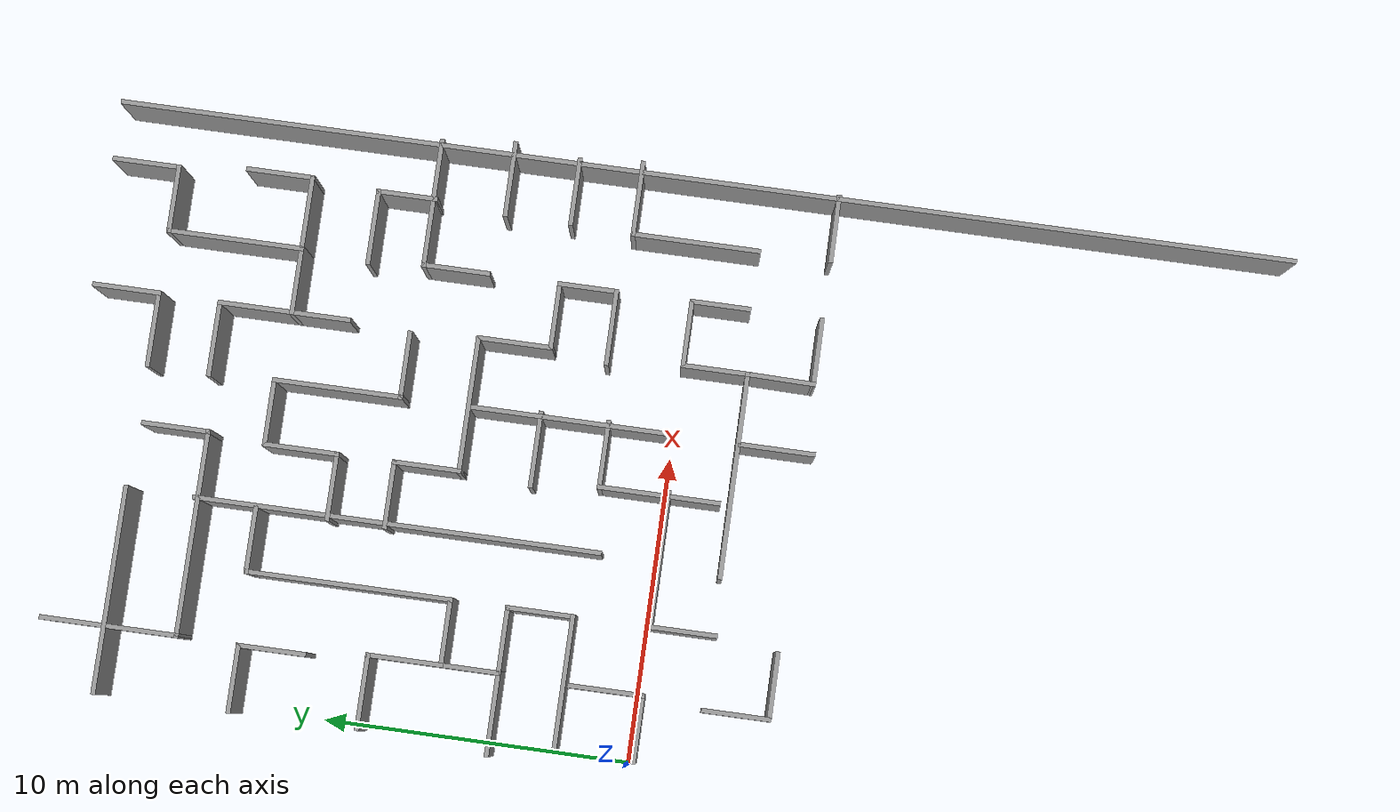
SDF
<sdf version="1.7">
 <model name="complex_maze">
  <pose>-0.002641 -0.038098 0 0 -0 0</pose>
  <link name="Wall_100">
   <collision name="Wall_100_Collision">
    <geometry><box><size>2.25 0.15 2.5</size></box></geometry>
    <pose>0 0 1.25 0 -0 0</pose>
   </collision>
   <visual name="Wall_100_Visual">
    <pose>0 0 1.25 0 -0 0</pose>
    <geometry><box><size>2.25 0.15 2.5</size></box></geometry>
    <material>
     <script><uri>file://media/materials/scripts/gazebo.material</uri><name>Gazebo/Grey</name></script>
     <ambient>1 1 1 1</ambient>
    </material>
    <meta><layer>0</layer></meta>
   </visual>
   <pose>17.9525 -4.25699 0 0 -0 3.14159</pose>
  </link>
  <link name="Wall_200">
   <collision name="Wall_200_Collision">
    <geometry><box><size>2.25 0.15 2.5</size></box></geometry>
    <pose>0 0 1.25 0 -0 0</pose>
   </collision>
   <visual name="Wall_200_Visual">
    <pose>0 0 1.25 0 -0 0</pose>
    <geometry><box><size>2.25 0.15 2.5</size></box></geometry>
    <material>
     <script><uri>file://media/materials/scripts/gazebo.material</uri><name>Gazebo/Grey</name></script>
     <ambient>1 1 1 1</ambient>
    </material>
    <meta><layer>0</layer></meta>
   </visual>
   <pose>5.42948 12.9422 0 0 -0 3.14159</pose>
  </link>
  <link name="Wall_201">
   <collision name="Wall_201_Collision">
    <geometry><box><size>6.75 0.15 2.5</size></box></geometry>
    <pose>0 0 1.25 0 -0 0</pose>
   </collision>
   <visual name="Wall_201_Visual">
    <pose>0 0 1.25 0 -0 0</pose>
    <geometry><box><size>6.75 0.15 2.5</size></box></geometry>
    <material>
     <script><uri>file://media/materials/scripts/gazebo.material</uri><name>Gazebo/Grey</name></script>
     <ambient>1 1 1 1</ambient>
    </material>
    <meta><layer>0</layer></meta>
   </visual>
   <pose>4.37948 9.64221 0 0 -0 -1.5708</pose>
  </link>
  <link name="Wall_202">
   <collision name="Wall_202_Collision">
    <geometry><box><size>2.25 0.15 2.5</size></box></geometry>
    <pose>0 0 1.25 0 -0 0</pose>
   </collision>
   <visual name="Wall_202_Visual">
    <pose>0 0 1.25 0 -0 0</pose>
    <geometry><box><size>2.25 0.15 2.5</size></box></geometry>
    <material>
     <script><uri>file://media/materials/scripts/gazebo.material</uri><name>Gazebo/Grey</name></script>
     <ambient>1 1 1 1</ambient>
    </material>
    <meta><layer>0</layer></meta>
   </visual>
   <pose>3.32948 6.34221 0 0 -0 3.14159</pose>
  </link>
  <link name="Wall_203">
   <collision name="Wall_203_Collision">
    <geometry><box><size>2.5 0.15 2.5</size></box></geometry>
    <pose>0 0 1.25 0 -0 0</pose>
   </collision>
   <visual name="Wall_203_Visual">
    <pose>0 0 1.25 0 -0 0</pose>
    <geometry><box><size>2.5 0.15 2.5</size></box></geometry>
    <material>
     <script><uri>file://media/materials/scripts/gazebo.material</uri><name>Gazebo/Grey</name></script>
     <ambient>1 1 1 1</ambient>
    </material>
    <meta><layer>0</layer></meta>
   </visual>
   <pose>2.27948 7.51721 0 0 -0 1.5708</pose>
  </link>
  <link name="Wall_204">
   <collision name="Wall_204_Collision">
    <geometry><box><size>2.5 0.15 2.5</size></box></geometry>
    <pose>0 0 1.25 0 -0 0</pose>
   </collision>
   <visual name="Wall_204_Visual">
    <pose>0 0 1.25 0 -0 0</pose>
    <geometry><box><size>2.5 0.15 2.5</size></box></geometry>
    <material>
     <script><uri>file://media/materials/scripts/gazebo.material</uri><name>Gazebo/Grey</name></script>
     <ambient>1 1 1 1</ambient>
    </material>
    <meta><layer>0</layer></meta>
   </visual>
   <pose>1.10448 8.69221 0 0 -0 3.14159</pose>
  </link>
  <link name="Wall_207">
   <collision name="Wall_207_Collision">
    <geometry><box><size>2 0.15 2.5</size></box></geometry>
    <pose>0 0 1.25 0 -0 0</pose>
   </collision>
   <visual name="Wall_207_Visual">
    <pose>0 0 1.25 0 -0 0</pose>
    <geometry><box><size>2 0.15 2.5</size></box></geometry>
    <material>
     <script><uri>file://media/materials/scripts/gazebo.material</uri><name>Gazebo/Grey</name></script>
     <ambient>1 1 1 1</ambient>
    </material>
    <meta><layer>0</layer></meta>
   </visual>
   <pose>2.27948 5.41721 0 0 -0 -1.5708</pose>
  </link>
  <link name="Wall_208">
   <collision name="Wall_208_Collision">
    <geometry><box><size>2.75 0.15 2.5</size></box></geometry>
    <pose>0 0 1.25 0 -0 0</pose>
   </collision>
   <visual name="Wall_208_Visual">
    <pose>0 0 1.25 0 -0 0</pose>
    <geometry><box><size>2.75 0.15 2.5</size></box></geometry>
    <material>
     <script><uri>file://media/materials/scripts/gazebo.material</uri><name>Gazebo/Grey</name></script>
     <ambient>1 1 1 1</ambient>
    </material>
    <meta><layer>0</layer></meta>
   </visual>
   <pose>0.97948 4.49221 0 0 -0 3.14159</pose>
  </link>
  <link name="Wall_210">
   <collision name="Wall_210_Collision">
    <geometry><box><size>2.25 0.15 2.5</size></box></geometry>
    <pose>0 0 1.25 0 -0 0</pose>
   </collision>
   <visual name="Wall_210_Visual">
    <pose>0 0 1.25 0 -0 0</pose>
    <geometry><box><size>2.25 0.15 2.5</size></box></geometry>
    <material>
     <script><uri>file://media/materials/scripts/gazebo.material</uri><name>Gazebo/Grey</name></script>
     <ambient>1 1 1 1</ambient>
    </material>
    <meta><layer>0</layer></meta>
   </visual>
   <pose>3.32948 4.49221 0 0 -0 0</pose>
  </link>
  <link name="Wall_211">
   <collision name="Wall_211_Collision">
    <geometry><box><size>2.25 0.15 2.5</size></box></geometry>
    <pose>0 0 1.25 0 -0 0</pose>
   </collision>
   <visual name="Wall_211_Visual">
    <pose>0 0 1.25 0 -0 0</pose>
    <geometry><box><size>2.25 0.15 2.5</size></box></geometry>
    <material>
     <script><uri>file://media/materials/scripts/gazebo.material</uri><name>Gazebo/Grey</name></script>
     <ambient>1 1 1 1</ambient>
    </material>
    <meta><layer>0</layer></meta>
   </visual>
   <pose>4.37948 3.44221 0 0 -0 -1.5708</pose>
  </link>
  <link name="Wall_212">
   <collision name="Wall_212_Collision">
    <geometry><box><size>4.5 0.15 2.5</size></box></geometry>
    <pose>0 0 1.25 0 -0 0</pose>
   </collision>
   <visual name="Wall_212_Visual">
    <pose>0 0 1.25 0 -0 0</pose>
    <geometry><box><size>4.5 0.15 2.5</size></box></geometry>
    <material>
     <script><uri>file://media/materials/scripts/gazebo.material</uri><name>Gazebo/Grey</name></script>
     <ambient>1 1 1 1</ambient>
    </material>
    <meta><layer>0</layer></meta>
   </visual>
   <pose>2.20448 2.39221 0 0 -0 3.14159</pose>
  </link>
  <link name="Wall_214">
   <collision name="Wall_214_Collision">
    <geometry><box><size>2.5 0.15 2.5</size></box></geometry>
    <pose>0 0 1.25 0 -0 0</pose>
   </collision>
   <visual name="Wall_214_Visual">
    <pose>0 0 1.25 0 -0 0</pose>
    <geometry><box><size>2.5 0.15 2.5</size></box></geometry>
    <material>
     <script><uri>file://media/materials/scripts/gazebo.material</uri><name>Gazebo/Grey</name></script>
     <ambient>1 1 1 1</ambient>
    </material>
    <meta><layer>0</layer></meta>
   </visual>
   <pose>2.19928 1.01321 0 0 -0 -1.5708</pose>
  </link>
  <link name="Wall_215">
   <collision name="Wall_215_Collision">
    <geometry><box><size>2.25 0.15 2.5</size></box></geometry>
    <pose>0 0 1.25 0 -0 0</pose>
   </collision>
   <visual name="Wall_215_Visual">
    <pose>0 0 1.25 0 -0 0</pose>
    <geometry><box><size>2.25 0.15 2.5</size></box></geometry>
    <material>
     <script><uri>file://media/materials/scripts/gazebo.material</uri><name>Gazebo/Grey</name></script>
     <ambient>1 1 1 1</ambient>
    </material>
    <meta><layer>0</layer></meta>
   </visual>
   <pose>1.14928 -0.161789 0 0 -0 3.14159</pose>
  </link>
  <link name="Wall_219">
   <collision name="Wall_219_Collision">
    <geometry><box><size>2.25 0.15 2.5</size></box></geometry>
    <pose>0 0 1.25 0 -0 0</pose>
   </collision>
   <visual name="Wall_219_Visual">
    <pose>0 0 1.25 0 -0 0</pose>
    <geometry><box><size>2.25 0.15 2.5</size></box></geometry>
    <material>
     <script><uri>file://media/materials/scripts/gazebo.material</uri><name>Gazebo/Grey</name></script>
     <ambient>1 1 1 1</ambient>
    </material>
    <meta><layer>0</layer></meta>
   </visual>
   <pose>1.99867 -3.19549 0 0 -0 -1.5708</pose>
  </link>
  <link name="Wall_220">
   <collision name="Wall_220_Collision">
    <geometry><box><size>2.25 0.15 2.5</size></box></geometry>
    <pose>0 0 1.25 0 -0 0</pose>
   </collision>
   <visual name="Wall_220_Visual">
    <pose>0 0 1.25 0 -0 0</pose>
    <geometry><box><size>2.25 0.15 2.5</size></box></geometry>
    <material>
     <script><uri>file://media/materials/scripts/gazebo.material</uri><name>Gazebo/Grey</name></script>
     <ambient>1 1 1 1</ambient>
    </material>
    <meta><layer>0</layer></meta>
   </visual>
   <pose>3.04867 -4.24549 0 0 -0 0</pose>
  </link>
  <link name="Wall_249">
   <collision name="Wall_249_Collision">
    <geometry><box><size>6.5 0.15 2.5</size></box></geometry>
    <pose>0 0 1.25 0 -0 0</pose>
   </collision>
   <visual name="Wall_249_Visual">
    <pose>0 0 1.25 0 -0 0</pose>
    <geometry><box><size>6.5 0.15 2.5</size></box></geometry>
    <material>
     <script><uri>file://media/materials/scripts/gazebo.material</uri><name>Gazebo/Grey</name></script>
     <ambient>1 1 1 1</ambient>
    </material>
    <meta><layer>0</layer></meta>
   </visual>
   <pose>10.5992 3.34691 0 0 -0 -1.5708</pose>
  </link>
  <link name="Wall_251">
   <collision name="Wall_251_Collision">
    <geometry><box><size>2.5 0.15 2.5</size></box></geometry>
    <pose>0 0 1.25 0 -0 0</pose>
   </collision>
   <visual name="Wall_251_Visual">
    <pose>0 0 1.25 0 -0 0</pose>
    <geometry><box><size>2.5 0.15 2.5</size></box></geometry>
    <material>
     <script><uri>file://media/materials/scripts/gazebo.material</uri><name>Gazebo/Grey</name></script>
     <ambient>1 1 1 1</ambient>
    </material>
    <meta><layer>0</layer></meta>
   </visual>
   <pose>9.52707 4.32831 0 0 -0 0</pose>
  </link>
  <link name="Wall_253">
   <collision name="Wall_253_Collision">
    <geometry><box><size>2.25 0.15 2.5</size></box></geometry>
    <pose>0 0 1.25 0 -0 0</pose>
   </collision>
   <visual name="Wall_253_Visual">
    <pose>0 0 1.25 0 -0 0</pose>
    <geometry><box><size>2.25 0.15 2.5</size></box></geometry>
    <material>
     <script><uri>file://media/materials/scripts/gazebo.material</uri><name>Gazebo/Grey</name></script>
     <ambient>1 1 1 1</ambient>
    </material>
    <meta><layer>0</layer></meta>
   </visual>
   <pose>9.65618 2.13471 0 0 -0 3.14159</pose>
  </link>
  <link name="Wall_254">
   <collision name="Wall_254_Collision">
    <geometry><box><size>4 0.15 2.5</size></box></geometry>
    <pose>0 0 1.25 0 -0 0</pose>
   </collision>
   <visual name="Wall_254_Visual">
    <pose>0 0 1.25 0 -0 0</pose>
    <geometry><box><size>4 0.15 2.5</size></box></geometry>
    <material>
     <script><uri>file://media/materials/scripts/gazebo.material</uri><name>Gazebo/Grey</name></script>
     <ambient>1 1 1 1</ambient>
    </material>
    <meta><layer>0</layer></meta>
   </visual>
   <pose>8.60618 0.209708 0 0 -0 -1.5708</pose>
  </link>
  <link name="Wall_256">
   <collision name="Wall_256_Collision">
    <geometry><box><size>2.25 0.15 2.5</size></box></geometry>
    <pose>0 0 1.25 0 -0 0</pose>
   </collision>
   <visual name="Wall_256_Visual">
    <pose>0 0 1.25 0 -0 0</pose>
    <geometry><box><size>2.25 0.15 2.5</size></box></geometry>
    <material>
     <script><uri>file://media/materials/scripts/gazebo.material</uri><name>Gazebo/Grey</name></script>
     <ambient>1 1 1 1</ambient>
    </material>
    <meta><layer>0</layer></meta>
   </visual>
   <pose>4.39288 -1.14899 0 0 -0 1.5708</pose>
  </link>
  <link name="Wall_257">
   <collision name="Wall_257_Collision">
    <geometry><box><size>4.5 0.15 2.5</size></box></geometry>
    <pose>0 0 1.25 0 -0 0</pose>
   </collision>
   <visual name="Wall_257_Visual">
    <pose>0 0 1.25 0 -0 0</pose>
    <geometry><box><size>4.5 0.15 2.5</size></box></geometry>
    <material>
     <script><uri>file://media/materials/scripts/gazebo.material</uri><name>Gazebo/Grey</name></script>
     <ambient>1 1 1 1</ambient>
    </material>
    <meta><layer>0</layer></meta>
   </visual>
   <pose>6.56788 -0.098994 0 0 -0 0</pose>
  </link>
  <link name="Wall_259">
   <collision name="Wall_259_Collision">
    <geometry><box><size>6.75 0.15 2.5</size></box></geometry>
    <pose>0 0 1.25 0 -0 0</pose>
   </collision>
   <visual name="Wall_259_Visual">
    <pose>0 0 1.25 0 -0 0</pose>
    <geometry><box><size>6.75 0.15 2.5</size></box></geometry>
    <material>
     <script><uri>file://media/materials/scripts/gazebo.material</uri><name>Gazebo/Grey</name></script>
     <ambient>1 1 1 1</ambient>
    </material>
    <meta><layer>0</layer></meta>
   </visual>
   <pose>9.56547 -2.09199 0 0 -0 0</pose>
  </link>
  <link name="Wall_260">
   <collision name="Wall_260_Collision">
    <geometry><box><size>2.25 0.15 2.5</size></box></geometry>
    <pose>0 0 1.25 0 -0 0</pose>
   </collision>
   <visual name="Wall_260_Visual">
    <pose>0 0 1.25 0 -0 0</pose>
    <geometry><box><size>2.25 0.15 2.5</size></box></geometry>
    <material>
     <script><uri>file://media/materials/scripts/gazebo.material</uri><name>Gazebo/Grey</name></script>
     <ambient>1 1 1 1</ambient>
    </material>
    <meta><layer>0</layer></meta>
   </visual>
   <pose>12.8655 -1.04199 0 0 -0 1.5708</pose>
  </link>
  <link name="Wall_261">
   <collision name="Wall_261_Collision">
    <geometry><box><size>2.25 0.15 2.5</size></box></geometry>
    <pose>0 0 1.25 0 -0 0</pose>
   </collision>
   <visual name="Wall_261_Visual">
    <pose>0 0 1.25 0 -0 0</pose>
    <geometry><box><size>2.25 0.15 2.5</size></box></geometry>
    <material>
     <script><uri>file://media/materials/scripts/gazebo.material</uri><name>Gazebo/Grey</name></script>
     <ambient>1 1 1 1</ambient>
    </material>
    <meta><layer>0</layer></meta>
   </visual>
   <pose>13.9155 0.008011 0 0 -0 0</pose>
  </link>
  <link name="Wall_262">
   <collision name="Wall_262_Collision">
    <geometry><box><size>2 0.15 2.5</size></box></geometry>
    <pose>0 0 1.25 0 -0 0</pose>
   </collision>
   <visual name="Wall_262_Visual">
    <pose>0 0 1.25 0 -0 0</pose>
    <geometry><box><size>2 0.15 2.5</size></box></geometry>
    <material>
     <script><uri>file://media/materials/scripts/gazebo.material</uri><name>Gazebo/Grey</name></script>
     <ambient>1 1 1 1</ambient>
    </material>
    <meta><layer>0</layer></meta>
   </visual>
   <pose>14.9655 -0.916989 0 0 -0 -1.5708</pose>
  </link>
  <link name="Wall_264">
   <collision name="Wall_264_Collision">
    <geometry><box><size>2.25 0.15 2.5</size></box></geometry>
    <pose>0 0 1.25 0 -0 0</pose>
   </collision>
   <visual name="Wall_264_Visual">
    <pose>0 0 1.25 0 -0 0</pose>
    <geometry><box><size>2.25 0.15 2.5</size></box></geometry>
    <material>
     <script><uri>file://media/materials/scripts/gazebo.material</uri><name>Gazebo/Grey</name></script>
     <ambient>1 1 1 1</ambient>
    </material>
    <meta><layer>0</layer></meta>
   </visual>
   <pose>13.8829 -4.23209 0 0 -0 3.14159</pose>
  </link>
  <link name="Wall_265">
   <collision name="Wall_265_Collision">
    <geometry><box><size>2.29035 0.15 2.5</size></box></geometry>
    <pose>0 0 1.25 0 -0 0</pose>
   </collision>
   <visual name="Wall_265_Visual">
    <pose>0 0 1.25 0 -0 0</pose>
    <geometry><box><size>2.29035 0.15 2.5</size></box></geometry>
    <material>
     <script><uri>file://media/materials/scripts/gazebo.material</uri><name>Gazebo/Grey</name></script>
     <ambient>1 1 1 1</ambient>
    </material>
    <meta><layer>0</layer></meta>
   </visual>
   <pose>12.8492 -3.16204 0 0 -0 1.55557</pose>
  </link>
  <link name="Wall_269">
   <collision name="Wall_269_Collision">
    <geometry><box><size>2.5 0.15 2.5</size></box></geometry>
    <pose>0 0 1.25 0 -0 0</pose>
   </collision>
   <visual name="Wall_269_Visual">
    <pose>0 0 1.25 0 -0 0</pose>
    <geometry><box><size>2.5 0.15 2.5</size></box></geometry>
    <material>
     <script><uri>file://media/materials/scripts/gazebo.material</uri><name>Gazebo/Grey</name></script>
     <ambient>1 1 1 1</ambient>
    </material>
    <meta><layer>0</layer></meta>
   </visual>
   <pose>10.5795 -3.34719 0 0 -0 1.5708</pose>
  </link>
  <link name="Wall_3">
   <collision name="Wall_3_Collision">
    <geometry><box><size>38.5 0.15 2.5</size></box></geometry>
    <pose>0 0 1.25 0 -0 0</pose>
   </collision>
   <visual name="Wall_3_Visual">
    <pose>0 0 1.25 0 -0 0</pose>
    <geometry><box><size>38.5 0.15 2.5</size></box></geometry>
    <material>
     <script><uri>file://media/materials/scripts/gazebo.material</uri><name>Gazebo/Grey</name></script>
     <ambient>1 1 1 1</ambient>
    </material>
    <meta><layer>0</layer></meta>
   </visual>
   <pose>18.9357 0.058416 0 0 -0 1.5708</pose>
  </link>
  <link name="Wall_33">
   <collision name="Wall_33_Collision">
    <geometry><box><size>4.5 0.15 2.5</size></box></geometry>
    <pose>0 0 1.25 0 -0 0</pose>
   </collision>
   <visual name="Wall_33_Visual">
    <pose>0 0 1.25 0 -0 0</pose>
    <geometry><box><size>4.5 0.15 2.5</size></box></geometry>
    <material>
     <script><uri>file://media/materials/scripts/gazebo.material</uri><name>Gazebo/Grey</name></script>
     <ambient>1 1 1 1</ambient>
    </material>
    <meta><layer>0</layer></meta>
   </visual>
   <pose>2.05219 17.0117 0 0 -0 -1.5708</pose>
  </link>
  <link name="Wall_34">
   <collision name="Wall_34_Collision">
    <geometry><box><size>6.75 0.15 2.5</size></box></geometry>
    <pose>0 0 1.25 0 -0 0</pose>
   </collision>
   <visual name="Wall_34_Visual">
    <pose>0 0 1.25 0 -0 0</pose>
    <geometry><box><size>6.75 0.15 2.5</size></box></geometry>
    <material>
     <script><uri>file://media/materials/scripts/gazebo.material</uri><name>Gazebo/Grey</name></script>
     <ambient>1 1 1 1</ambient>
    </material>
    <meta><layer>0</layer></meta>
   </visual>
   <pose>5.35219 14.8367 0 0 -0 0</pose>
  </link>
  <link name="Wall_35">
   <collision name="Wall_35_Collision">
    <geometry><box><size>2.25 0.15 2.5</size></box></geometry>
    <pose>0 0 1.25 0 -0 0</pose>
   </collision>
   <visual name="Wall_35_Visual">
    <pose>0 0 1.25 0 -0 0</pose>
    <geometry><box><size>2.25 0.15 2.5</size></box></geometry>
    <material>
     <script><uri>file://media/materials/scripts/gazebo.material</uri><name>Gazebo/Grey</name></script>
     <ambient>1 1 1 1</ambient>
    </material>
    <meta><layer>0</layer></meta>
   </visual>
   <pose>8.65219 15.8867 0 0 -0 1.5708</pose>
  </link>
  <link name="Wall_37">
   <collision name="Wall_37_Collision">
    <geometry><box><size>6.75 0.15 2.5</size></box></geometry>
    <pose>0 0 1.25 0 -0 0</pose>
   </collision>
   <visual name="Wall_37_Visual">
    <pose>0 0 1.25 0 -0 0</pose>
    <geometry><box><size>6.75 0.15 2.5</size></box></geometry>
    <material>
     <script><uri>file://media/materials/scripts/gazebo.material</uri><name>Gazebo/Grey</name></script>
     <ambient>1 1 1 1</ambient>
    </material>
    <meta><layer>0</layer></meta>
   </visual>
   <pose>3.2174 17.1753 0 0 -0 3.14159</pose>
  </link>
  <link name="Wall_39">
   <collision name="Wall_39_Collision">
    <geometry><box><size>2.25 0.15 2.5</size></box></geometry>
    <pose>0 0 1.25 0 -0 0</pose>
   </collision>
   <visual name="Wall_39_Visual">
    <pose>0 0 1.25 0 -0 0</pose>
    <geometry><box><size>2.25 0.15 2.5</size></box></geometry>
    <material>
     <script><uri>file://media/materials/scripts/gazebo.material</uri><name>Gazebo/Grey</name></script>
     <ambient>1 1 1 1</ambient>
    </material>
    <meta><layer>0</layer></meta>
   </visual>
   <pose>0.967403 12.8253 0 0 -0 0</pose>
  </link>
  <link name="Wall_40">
   <collision name="Wall_40_Collision">
    <geometry><box><size>2.25 0.15 2.5</size></box></geometry>
    <pose>0 0 1.25 0 -0 0</pose>
   </collision>
   <visual name="Wall_40_Visual">
    <pose>0 0 1.25 0 -0 0</pose>
    <geometry><box><size>2.25 0.15 2.5</size></box></geometry>
    <material>
     <script><uri>file://media/materials/scripts/gazebo.material</uri><name>Gazebo/Grey</name></script>
     <ambient>1 1 1 1</ambient>
    </material>
    <meta><layer>0</layer></meta>
   </visual>
   <pose>2.0174 11.7753 0 0 -0 -1.5708</pose>
  </link>
  <link name="Wall_56">
   <collision name="Wall_56_Collision">
    <geometry><box><size>2.25 0.15 2.5</size></box></geometry>
    <pose>0 0 1.25 0 -0 0</pose>
   </collision>
   <visual name="Wall_56_Visual">
    <pose>0 0 1.25 0 -0 0</pose>
    <geometry><box><size>2.25 0.15 2.5</size></box></geometry>
    <material>
     <script><uri>file://media/materials/scripts/gazebo.material</uri><name>Gazebo/Grey</name></script>
     <ambient>1 1 1 1</ambient>
    </material>
    <meta><layer>0</layer></meta>
   </visual>
   <pose>12.8844 18.1571 0 0 -0 -1.5708</pose>
  </link>
  <link name="Wall_57">
   <collision name="Wall_57_Collision">
    <geometry><box><size>2.5 0.15 2.5</size></box></geometry>
    <pose>0 0 1.25 0 -0 0</pose>
   </collision>
   <visual name="Wall_57_Visual">
    <pose>0 0 1.25 0 -0 0</pose>
    <geometry><box><size>2.5 0.15 2.5</size></box></geometry>
    <material>
     <script><uri>file://media/materials/scripts/gazebo.material</uri><name>Gazebo/Grey</name></script>
     <ambient>1 1 1 1</ambient>
    </material>
    <meta><layer>0</layer></meta>
   </visual>
   <pose>11.7094 17.1071 0 0 -0 3.14159</pose>
  </link>
  <link name="Wall_59">
   <collision name="Wall_59_Collision">
    <geometry><box><size>2.25 0.15 2.5</size></box></geometry>
    <pose>0 0 1.25 0 -0 0</pose>
   </collision>
   <visual name="Wall_59_Visual">
    <pose>0 0 1.25 0 -0 0</pose>
    <geometry><box><size>2.25 0.15 2.5</size></box></geometry>
    <material>
     <script><uri>file://media/materials/scripts/gazebo.material</uri><name>Gazebo/Grey</name></script>
     <ambient>1 1 1 1</ambient>
    </material>
    <meta><layer>0</layer></meta>
   </visual>
   <pose>17.048 18.1571 0 0 -0 -1.5708</pose>
  </link>
  <link name="Wall_60">
   <collision name="Wall_60_Collision">
    <geometry><box><size>2.25 0.15 2.5</size></box></geometry>
    <pose>0 0 1.25 0 -0 0</pose>
   </collision>
   <visual name="Wall_60_Visual">
    <pose>0 0 1.25 0 -0 0</pose>
    <geometry><box><size>2.25 0.15 2.5</size></box></geometry>
    <material>
     <script><uri>file://media/materials/scripts/gazebo.material</uri><name>Gazebo/Grey</name></script>
     <ambient>1 1 1 1</ambient>
    </material>
    <meta><layer>0</layer></meta>
   </visual>
   <pose>15.998 17.1071 0 0 -0 3.14159</pose>
  </link>
  <link name="Wall_61">
   <collision name="Wall_61_Collision">
    <geometry><box><size>4.5 0.15 2.5</size></box></geometry>
    <pose>0 0 1.25 0 -0 0</pose>
   </collision>
   <visual name="Wall_61_Visual">
    <pose>0 0 1.25 0 -0 0</pose>
    <geometry><box><size>4.5 0.15 2.5</size></box></geometry>
    <material>
     <script><uri>file://media/materials/scripts/gazebo.material</uri><name>Gazebo/Grey</name></script>
     <ambient>1 1 1 1</ambient>
    </material>
    <meta><layer>0</layer></meta>
   </visual>
   <pose>14.948 14.9321 0 0 -0 -1.5708</pose>
  </link>
  <link name="Wall_62">
   <collision name="Wall_62_Collision">
    <geometry><box><size>2.5 0.15 2.5</size></box></geometry>
    <pose>0 0 1.25 0 -0 0</pose>
   </collision>
   <visual name="Wall_62_Visual">
    <pose>0 0 1.25 0 -0 0</pose>
    <geometry><box><size>2.5 0.15 2.5</size></box></geometry>
    <material>
     <script><uri>file://media/materials/scripts/gazebo.material</uri><name>Gazebo/Grey</name></script>
     <ambient>1 1 1 1</ambient>
    </material>
    <meta><layer>0</layer></meta>
   </visual>
   <pose>16.123 12.7571 0 0 -0 0</pose>
  </link>
  <link name="Wall_63">
   <collision name="Wall_63_Collision">
    <geometry><box><size>2.25 0.15 2.5</size></box></geometry>
    <pose>0 0 1.25 0 -0 0</pose>
   </collision>
   <visual name="Wall_63_Visual">
    <pose>0 0 1.25 0 -0 0</pose>
    <geometry><box><size>2.25 0.15 2.5</size></box></geometry>
    <material>
     <script><uri>file://media/materials/scripts/gazebo.material</uri><name>Gazebo/Grey</name></script>
     <ambient>1 1 1 1</ambient>
    </material>
    <meta><layer>0</layer></meta>
   </visual>
   <pose>17.298 13.8071 0 0 -0 1.5708</pose>
  </link>
  <link name="Wall_65">
   <collision name="Wall_65_Collision">
    <geometry><box><size>2.25 0.15 2.5</size></box></geometry>
    <pose>0 0 1.25 0 -0 0</pose>
   </collision>
   <visual name="Wall_65_Visual">
    <pose>0 0 1.25 0 -0 0</pose>
    <geometry><box><size>2.25 0.15 2.5</size></box></geometry>
    <material>
     <script><uri>file://media/materials/scripts/gazebo.material</uri><name>Gazebo/Grey</name></script>
     <ambient>1 1 1 1</ambient>
    </material>
    <meta><layer>0</layer></meta>
   </visual>
   <pose>13.8979 12.7571 0 0 -0 3.14159</pose>
  </link>
  <link name="Wall_66">
   <collision name="Wall_66_Collision">
    <geometry><box><size>2 0.15 2.5</size></box></geometry>
    <pose>0 0 1.25 0 -0 0</pose>
   </collision>
   <visual name="Wall_66_Visual">
    <pose>0 0 1.25 0 -0 0</pose>
    <geometry><box><size>2 0.15 2.5</size></box></geometry>
    <material>
     <script><uri>file://media/materials/scripts/gazebo.material</uri><name>Gazebo/Grey</name></script>
     <ambient>1 1 1 1</ambient>
    </material>
    <meta><layer>0</layer></meta>
   </visual>
   <pose>12.848 11.8321 0 0 -0 -1.5708</pose>
  </link>
  <link name="Wall_68">
   <collision name="Wall_68_Collision">
    <geometry><box><size>2.5 0.15 2.5</size></box></geometry>
    <pose>0 0 1.25 0 -0 0</pose>
   </collision>
   <visual name="Wall_68_Visual">
    <pose>0 0 1.25 0 -0 0</pose>
    <geometry><box><size>2.5 0.15 2.5</size></box></geometry>
    <material>
     <script><uri>file://media/materials/scripts/gazebo.material</uri><name>Gazebo/Grey</name></script>
     <ambient>1 1 1 1</ambient>
    </material>
    <meta><layer>0</layer></meta>
   </visual>
   <pose>12.848 13.9321 0 0 -0 1.5708</pose>
  </link>
  <link name="Wall_69">
   <collision name="Wall_69_Collision">
    <geometry><box><size>2.5 0.15 2.5</size></box></geometry>
    <pose>0 0 1.25 0 -0 0</pose>
   </collision>
   <visual name="Wall_69_Visual">
    <pose>0 0 1.25 0 -0 0</pose>
    <geometry><box><size>2.5 0.15 2.5</size></box></geometry>
    <material>
     <script><uri>file://media/materials/scripts/gazebo.material</uri><name>Gazebo/Grey</name></script>
     <ambient>1 1 1 1</ambient>
    </material>
    <meta><layer>0</layer></meta>
   </visual>
   <pose>11.673 15.1071 0 0 -0 3.14159</pose>
  </link>
  <link name="Wall_71">
   <collision name="Wall_71_Collision">
    <geometry><box><size>13.25 0.15 2.5</size></box></geometry>
    <pose>0 0 1.25 0 -0 0</pose>
   </collision>
   <visual name="Wall_71_Visual">
    <pose>0 0 1.25 0 -0 0</pose>
    <geometry><box><size>13.25 0.15 2.5</size></box></geometry>
    <material>
     <script><uri>file://media/materials/scripts/gazebo.material</uri><name>Gazebo/Grey</name></script>
     <ambient>1 1 1 1</ambient>
    </material>
    <meta><layer>0</layer></meta>
   </visual>
   <pose>6.50715 8.38925 0 0 -0 -1.5708</pose>
  </link>
  <link name="Wall_73">
   <collision name="Wall_73_Collision">
    <geometry><box><size>2.25 0.15 2.5</size></box></geometry>
    <pose>0 0 1.25 0 -0 0</pose>
   </collision>
   <visual name="Wall_73_Visual">
    <pose>0 0 1.25 0 -0 0</pose>
    <geometry><box><size>2.25 0.15 2.5</size></box></geometry>
    <material>
     <script><uri>file://media/materials/scripts/gazebo.material</uri><name>Gazebo/Grey</name></script>
     <ambient>1 1 1 1</ambient>
    </material>
    <meta><layer>0</layer></meta>
   </visual>
   <pose>7.45075 10.63 0 0 -0 0</pose>
  </link>
  <link name="Wall_74">
   <collision name="Wall_74_Collision">
    <geometry><box><size>2.5 0.15 2.5</size></box></geometry>
    <pose>0 0 1.25 0 -0 0</pose>
   </collision>
   <visual name="Wall_74_Visual">
    <pose>0 0 1.25 0 -0 0</pose>
    <geometry><box><size>2.5 0.15 2.5</size></box></geometry>
    <material>
     <script><uri>file://media/materials/scripts/gazebo.material</uri><name>Gazebo/Grey</name></script>
     <ambient>1 1 1 1</ambient>
    </material>
    <meta><layer>0</layer></meta>
   </visual>
   <pose>8.50075 11.805 0 0 -0 1.5708</pose>
  </link>
  <link name="Wall_75">
   <collision name="Wall_75_Collision">
    <geometry><box><size>2.25 0.15 2.5</size></box></geometry>
    <pose>0 0 1.25 0 -0 0</pose>
   </collision>
   <visual name="Wall_75_Visual">
    <pose>0 0 1.25 0 -0 0</pose>
    <geometry><box><size>2.25 0.15 2.5</size></box></geometry>
    <material>
     <script><uri>file://media/materials/scripts/gazebo.material</uri><name>Gazebo/Grey</name></script>
     <ambient>1 1 1 1</ambient>
    </material>
    <meta><layer>0</layer></meta>
   </visual>
   <pose>9.55075 12.98 0 0 -0 0</pose>
  </link>
  <link name="Wall_76">
   <collision name="Wall_76_Collision">
    <geometry><box><size>4.25 0.15 2.5</size></box></geometry>
    <pose>0 0 1.25 0 -0 0</pose>
   </collision>
   <visual name="Wall_76_Visual">
    <pose>0 0 1.25 0 -0 0</pose>
    <geometry><box><size>4.25 0.15 2.5</size></box></geometry>
    <material>
     <script><uri>file://media/materials/scripts/gazebo.material</uri><name>Gazebo/Grey</name></script>
     <ambient>1 1 1 1</ambient>
    </material>
    <meta><layer>0</layer></meta>
   </visual>
   <pose>10.6007 10.93 0 0 -0 -1.5708</pose>
  </link>
  <link name="Wall_77">
   <collision name="Wall_77_Collision">
    <geometry><box><size>2.25 0.15 2.5</size></box></geometry>
    <pose>0 0 1.25 0 -0 0</pose>
   </collision>
   <visual name="Wall_77_Visual">
    <pose>0 0 1.25 0 -0 0</pose>
    <geometry><box><size>2.25 0.15 2.5</size></box></geometry>
    <material>
     <script><uri>file://media/materials/scripts/gazebo.material</uri><name>Gazebo/Grey</name></script>
     <ambient>1 1 1 1</ambient>
    </material>
    <meta><layer>0</layer></meta>
   </visual>
   <pose>11.6507 8.88002 0 0 -0 0</pose>
  </link>
  <link name="Wall_79">
   <collision name="Wall_79_Collision">
    <geometry><box><size>4.25 0.15 2.5</size></box></geometry>
    <pose>0 0 1.25 0 -0 0</pose>
   </collision>
   <visual name="Wall_79_Visual">
    <pose>0 0 1.25 0 -0 0</pose>
    <geometry><box><size>4.25 0.15 2.5</size></box></geometry>
    <material>
     <script><uri>file://media/materials/scripts/gazebo.material</uri><name>Gazebo/Grey</name></script>
     <ambient>1 1 1 1</ambient>
    </material>
    <meta><layer>0</layer></meta>
   </visual>
   <pose>17.0124 8.76801 0 0 -0 3.14159</pose>
  </link>
  <link name="Wall_80">
   <collision name="Wall_80_Collision">
    <geometry><box><size>2.25 0.15 2.5</size></box></geometry>
    <pose>0 0 1.25 0 -0 0</pose>
   </collision>
   <visual name="Wall_80_Visual">
    <pose>0 0 1.25 0 -0 0</pose>
    <geometry><box><size>2.25 0.15 2.5</size></box></geometry>
    <material>
     <script><uri>file://media/materials/scripts/gazebo.material</uri><name>Gazebo/Grey</name></script>
     <ambient>1 1 1 1</ambient>
    </material>
    <meta><layer>0</layer></meta>
   </visual>
   <pose>14.9624 7.71801 0 0 -0 -1.5708</pose>
  </link>
  <link name="Wall_82">
   <collision name="Wall_82_Collision">
    <geometry><box><size>2 0.15 2.5</size></box></geometry>
    <pose>0 0 1.25 0 -0 0</pose>
   </collision>
   <visual name="Wall_82_Visual">
    <pose>0 0 1.25 0 -0 0</pose>
    <geometry><box><size>2 0.15 2.5</size></box></geometry>
    <material>
     <script><uri>file://media/materials/scripts/gazebo.material</uri><name>Gazebo/Grey</name></script>
     <ambient>1 1 1 1</ambient>
    </material>
    <meta><layer>0</layer></meta>
   </visual>
   <pose>17.1472 9.63981 0 0 -0 1.5708</pose>
  </link>
  <link name="Wall_83">
   <collision name="Wall_83_Collision">
    <geometry><box><size>2.5 0.15 2.5</size></box></geometry>
    <pose>0 0 1.25 0 -0 0</pose>
   </collision>
   <visual name="Wall_83_Visual">
    <pose>0 0 1.25 0 -0 0</pose>
    <geometry><box><size>2.5 0.15 2.5</size></box></geometry>
    <material>
     <script><uri>file://media/materials/scripts/gazebo.material</uri><name>Gazebo/Grey</name></script>
     <ambient>1 1 1 1</ambient>
    </material>
    <meta><layer>0</layer></meta>
   </visual>
   <pose>15.9722 10.5648 0 0 -0 3.14159</pose>
  </link>
  <link name="Wall_85">
   <collision name="Wall_85_Collision">
    <geometry><box><size>2.25 0.15 2.5</size></box></geometry>
    <pose>0 0 1.25 0 -0 0</pose>
   </collision>
   <visual name="Wall_85_Visual">
    <pose>0 0 1.25 0 -0 0</pose>
    <geometry><box><size>2.25 0.15 2.5</size></box></geometry>
    <material>
     <script><uri>file://media/materials/scripts/gazebo.material</uri><name>Gazebo/Grey</name></script>
     <ambient>1 1 1 1</ambient>
    </material>
    <meta><layer>0</layer></meta>
   </visual>
   <pose>7.45075 8.76801 0 0 -0 0</pose>
  </link>
  <link name="Wall_86">
   <collision name="Wall_86_Collision">
    <geometry><box><size>2.25 0.15 2.5</size></box></geometry>
    <pose>0 0 1.25 0 -0 0</pose>
   </collision>
   <visual name="Wall_86_Visual">
    <pose>0 0 1.25 0 -0 0</pose>
    <geometry><box><size>2.25 0.15 2.5</size></box></geometry>
    <material>
     <script><uri>file://media/materials/scripts/gazebo.material</uri><name>Gazebo/Grey</name></script>
     <ambient>1 1 1 1</ambient>
    </material>
    <meta><layer>0</layer></meta>
   </visual>
   <pose>8.50075 7.71801 0 0 -0 -1.5708</pose>
  </link>
  <link name="Wall_87">
   <collision name="Wall_87_Collision">
    <geometry><box><size>4.5 0.15 2.5</size></box></geometry>
    <pose>0 0 1.25 0 -0 0</pose>
   </collision>
   <visual name="Wall_87_Visual">
    <pose>0 0 1.25 0 -0 0</pose>
    <geometry><box><size>4.5 0.15 2.5</size></box></geometry>
    <material>
     <script><uri>file://media/materials/scripts/gazebo.material</uri><name>Gazebo/Grey</name></script>
     <ambient>1 1 1 1</ambient>
    </material>
    <meta><layer>0</layer></meta>
   </visual>
   <pose>10.6757 6.66801 0 0 -0 0</pose>
  </link>
  <link name="Wall_88">
   <collision name="Wall_88_Collision">
    <geometry><box><size>2.5 0.15 2.5</size></box></geometry>
    <pose>0 0 1.25 0 -0 0</pose>
   </collision>
   <visual name="Wall_88_Visual">
    <pose>0 0 1.25 0 -0 0</pose>
    <geometry><box><size>2.5 0.15 2.5</size></box></geometry>
    <material>
     <script><uri>file://media/materials/scripts/gazebo.material</uri><name>Gazebo/Grey</name></script>
     <ambient>1 1 1 1</ambient>
    </material>
    <meta><layer>0</layer></meta>
   </visual>
   <pose>12.8507 5.49301 0 0 -0 -1.5708</pose>
  </link>
  <link name="Wall_89">
   <collision name="Wall_89_Collision">
    <geometry><box><size>2.25 0.15 2.5</size></box></geometry>
    <pose>0 0 1.25 0 -0 0</pose>
   </collision>
   <visual name="Wall_89_Visual">
    <pose>0 0 1.25 0 -0 0</pose>
    <geometry><box><size>2.25 0.15 2.5</size></box></geometry>
    <material>
     <script><uri>file://media/materials/scripts/gazebo.material</uri><name>Gazebo/Grey</name></script>
     <ambient>1 1 1 1</ambient>
    </material>
    <meta><layer>0</layer></meta>
   </visual>
   <pose>13.9007 4.31801 0 0 -0 0</pose>
  </link>
  <link name="Wall_90">
   <collision name="Wall_90_Collision">
    <geometry><box><size>2 0.15 2.5</size></box></geometry>
    <pose>0 0 1.25 0 -0 0</pose>
   </collision>
   <visual name="Wall_90_Visual">
    <pose>0 0 1.25 0 -0 0</pose>
    <geometry><box><size>2 0.15 2.5</size></box></geometry>
    <material>
     <script><uri>file://media/materials/scripts/gazebo.material</uri><name>Gazebo/Grey</name></script>
     <ambient>1 1 1 1</ambient>
    </material>
    <meta><layer>0</layer></meta>
   </visual>
   <pose>14.9507 3.39301 0 0 -0 -1.5708</pose>
  </link>
  <link name="Wall_91">
   <collision name="Wall_91_Collision">
    <geometry><box><size>2.5 0.15 2.5</size></box></geometry>
    <pose>0 0 1.25 0 -0 0</pose>
   </collision>
   <visual name="Wall_91_Visual">
    <pose>0 0 1.25 0 -0 0</pose>
    <geometry><box><size>2.5 0.15 2.5</size></box></geometry>
    <material>
     <script><uri>file://media/materials/scripts/gazebo.material</uri><name>Gazebo/Grey</name></script>
     <ambient>1 1 1 1</ambient>
    </material>
    <meta><layer>0</layer></meta>
   </visual>
   <pose>13.7757 2.46801 0 0 -0 3.14159</pose>
  </link>
  <link name="Wall_93">
   <collision name="Wall_93_Collision">
    <geometry><box><size>2.5 0.15 2.5</size></box></geometry>
    <pose>0 0 1.25 0 -0 0</pose>
   </collision>
   <visual name="Wall_93_Visual">
    <pose>0 0 1.25 0 -0 0</pose>
    <geometry><box><size>2.5 0.15 2.5</size></box></geometry>
    <material>
     <script><uri>file://media/materials/scripts/gazebo.material</uri><name>Gazebo/Grey</name></script>
     <ambient>1 1 1 1</ambient>
    </material>
    <meta><layer>0</layer></meta>
   </visual>
   <pose>18.0617 2.19663 0 0 -0 3.14159</pose>
  </link>
  <link name="Wall_94">
   <collision name="Wall_94_Collision">
    <geometry><box><size>4.25 0.15 2.5</size></box></geometry>
    <pose>0 0 1.25 0 -0 0</pose>
   </collision>
   <visual name="Wall_94_Visual">
    <pose>0 0 1.25 0 -0 0</pose>
    <geometry><box><size>4.25 0.15 2.5</size></box></geometry>
    <material>
     <script><uri>file://media/materials/scripts/gazebo.material</uri><name>Gazebo/Grey</name></script>
     <ambient>1 1 1 1</ambient>
    </material>
    <meta><layer>0</layer></meta>
   </visual>
   <pose>16.8867 0.146634 0 0 -0 -1.5708</pose>
  </link>
  <link name="Wall_96">
   <collision name="Wall_96_Collision">
    <geometry><box><size>2.5 0.15 2.5</size></box></geometry>
    <pose>0 0 1.25 0 -0 0</pose>
   </collision>
   <visual name="Wall_96_Visual">
    <pose>0 0 1.25 0 -0 0</pose>
    <geometry><box><size>2.5 0.15 2.5</size></box></geometry>
    <material>
     <script><uri>file://media/materials/scripts/gazebo.material</uri><name>Gazebo/Grey</name></script>
     <ambient>1 1 1 1</ambient>
    </material>
    <meta><layer>0</layer></meta>
   </visual>
   <pose>18.1334 6.3884 0 0 -0 3.14159</pose>
  </link>
  <link name="Wall_98">
   <collision name="Wall_98_Collision">
    <geometry><box><size>2.25 0.15 2.5</size></box></geometry>
    <pose>0 0 1.25 0 -0 0</pose>
   </collision>
   <visual name="Wall_98_Visual">
    <pose>0 0 1.25 0 -0 0</pose>
    <geometry><box><size>2.25 0.15 2.5</size></box></geometry>
    <material>
     <script><uri>file://media/materials/scripts/gazebo.material</uri><name>Gazebo/Grey</name></script>
     <ambient>1 1 1 1</ambient>
    </material>
    <meta><layer>0</layer></meta>
   </visual>
   <pose>18.0137 4.24709 0 0 -0 3.14159</pose>
  </link>
  <static>1</static>
 </model>
</sdf>
